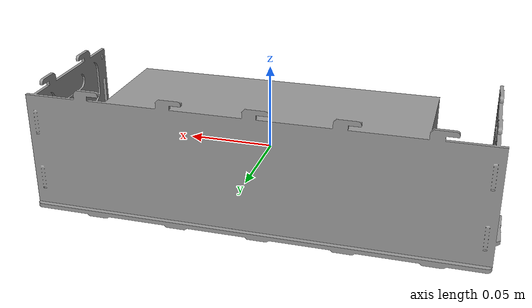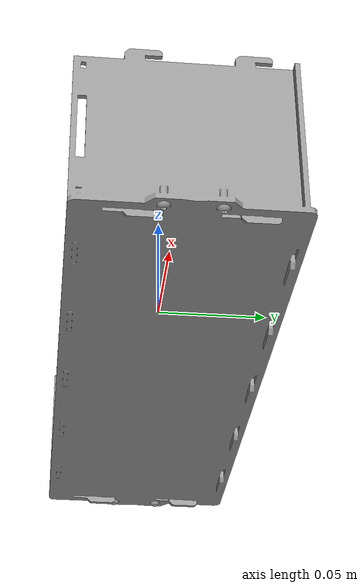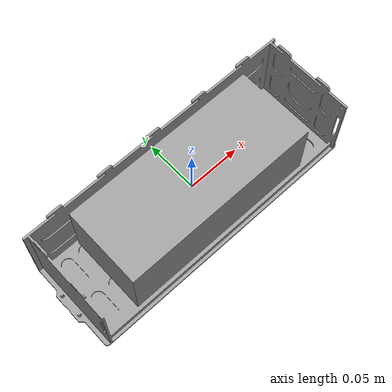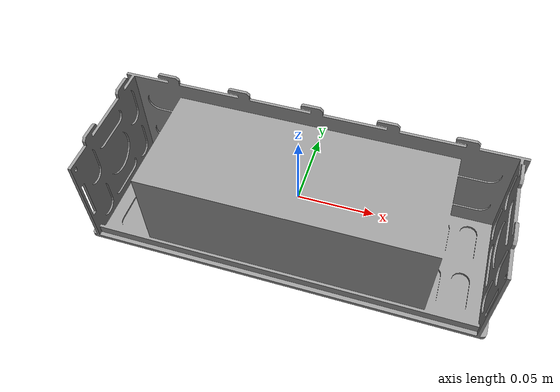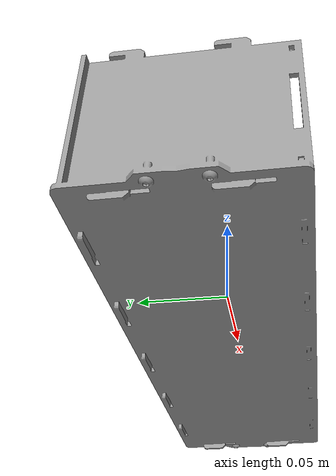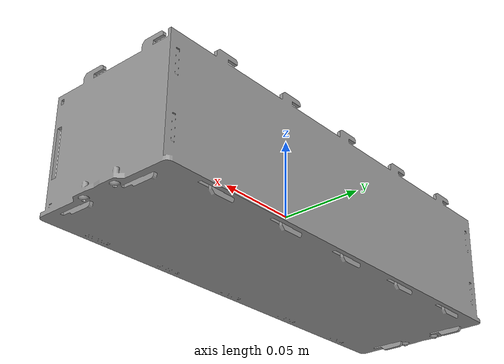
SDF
<?xml version="1.0" ?>

  <sdf version="1.5">
    <model name="usl_iwp_batt">

      <link name="platform_batt">
      <pose>0 0 0.0  0 0 0</pose>
      <inertial>
        <pose>0 0 0 0 0 0</pose>
        <mass>3.5</mass>
        <inertia>
          <ixx>0.2</ixx>
          <iyy>0.2</iyy>
          <izz>0.1</izz>
          <ixy>0</ixy>
          <ixz>0</ixz>
          <iyz>0</iyz>
        </inertia>
      </inertial>
      <collision name="platform_base_collision">
        <pose>0 0 0 0 0 0</pose>
        <geometry>
          <mesh>
            <uri>model://usl_iwp_batt/meshes/platform_batt.STL</uri>
          </mesh>
        </geometry>
        <surface>
          <contact>
            <ode>
              <max_vel>100.0</max_vel>
              <min_depth>0.001</min_depth>
            </ode>
          </contact>
          <friction>
            <ode>
              <mu>100000.0</mu>
              <mu2>100000.0</mu2>
            </ode>
          </friction>
        </surface>
      </collision>
      <visual name="platform_batt_visual">
        <geometry>
          <mesh>
            <uri>model://usl_iwp_batt/meshes/platform_batt.STL</uri>
          </mesh>
        </geometry>
        <material>
          <script>
            <name>Gazebo/Grey</name>
          </script>
        </material>
      </visual>
    </link>

</model>
</sdf>
